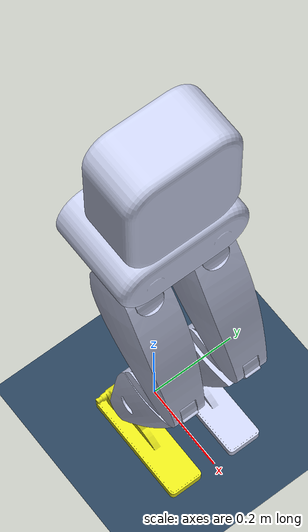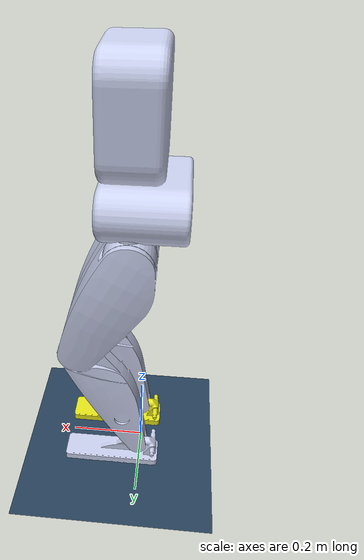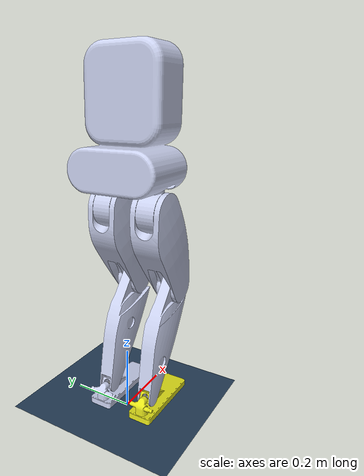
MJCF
<mujoco model="hl">
  <compiler angle="radian" meshdir="../meshes/"/>
  <statistic meansize="0.175672" extent="1.42462" center="0.0113815 2.47552e-05 -0.298814"/>
  <default> <geom contype="0" conaffinity="0"/> </default>
  <option timestep="0.001"/>
  <asset>
    <mesh name="BASE" file="BASE.STL"/>
    <mesh name="Z1" file="Z1.STL"/>
    <mesh name="Z2" file="Z2.STL"/>
    <mesh name="Z3" file="Z3.STL"/>
    <mesh name="Z4" file="Z4.STL"/>
    <mesh name="Z5" file="Z5.STL"/>
    <mesh name="Z6" file="Z6.STL"/>

    <mesh name="Y1" file="Y1.STL"/>
    <mesh name="Y2" file="Y2.STL"/>
    <mesh name="Y3" file="Y3.STL"/>
    <mesh name="Y4" file="Y4.STL"/>
    <mesh name="Y5" file="Y5.STL"/>
    <mesh name="Y6" file="Y6.STL"/>
  </asset>

  <asset>
    <texture type="skybox" builtin="gradient" rgb1=".3 .5 .7" rgb2="0 0 0" width="32" height="512"/>
    <texture name="body" type="cube" builtin="flat" mark="cross" width="128" height="128" rgb1="0.8 0.6 0.4" rgb2="0.8 0.6 0.4" markrgb="1 1 1" random="0.01"/>
    <material name="body" texture="body" texuniform="true" rgba="0.8 0.6 .4 1"/>
    <texture name="grid" type="2d" builtin="checker" width="512" height="512" rgb1=".1 .2 .3" rgb2=".2 .3 .4"/>
    <material name="grid" texture="grid" texrepeat="1 1" texuniform="true" reflectance=".2"/>
  </asset>

  <asset>
    <material name='ankle_acutator1' rgba='0.792157 0.819608 0.933333 1'/>
    <material name='ankle_link1' rgba='0.5 0.5 1.0 1.0'/>
    <material name='ankle_acutator2' rgba='0.792157 0.819608 0.933333 1'/>
    <material name='ankle_link2' rgba='0.5 0.5 1.0 1.0'/>
  </asset>

  <default>
    <default class='ankle_acutator1'>
      <geom type='cylinder' mass='0.1' size='0.025 0.01' pos='0 0 0' euler='1.57 0 0' contype='0' conaffinity='0' material='ankle_acutator1'/>
    </default>
    <default class='ankle_link1'>
      <geom type='cylinder' mass='0.06' size='0.006 0.108' pos='0 0 -0.108' euler='0 0 0' contype='0' conaffinity='0' material='ankle_link1'/>
    </default>
    <default class='ankle_acutator2'>
      <geom type='cylinder' mass='0.1' size='0.025 0.01' pos='0 0 0' euler='1.57 0 0' contype='0' conaffinity='0' material='ankle_acutator2'/>
    </default>
    <default class='ankle_link2'>
      <geom type='cylinder' mass='0.04' size='0.006 0.06' pos='0 0 -0.06' euler='0 0 0' contype='0' conaffinity='0' material='ankle_link2'/>
    </default>
  </default>

  <visual>
    <map force="0.1" zfar="30"/>
    <rgba haze="0.15 0.25 0.35 1"/>
    <global offwidth="2560" offheight="1440" elevation="-20" azimuth="120"/>
  </visual>

  <option timestep="0.002">
    <flag energy="enable" contact="enable"/>
  </option>

  <option cone="elliptic" impratio="1" integrator="implicitfast" jacobian="dense" solver="Newton" iterations="1000" tolerance="1e-10" apirate="1000"/>

  <worldbody>
    <geom name="floor" pos="0 0 0" size="0 0 .05" type="plane" material="grid" condim="4" contype="1" conaffinity="1" />
    <light name="spotlight" mode="targetbodycom" target="BASE" diffuse=".5 .5 .5" specular="0.8 0.8 0.7" pos="0 0 50" cutoff="10"/>
    <body name="BASE" pos="0 0 .789">
      <inertial pos="0.0201327 2.90249e-07 0.375289" quat="0.99283 7.1248e-06 0.119531 -4.64987e-06" mass="10" diaginertia="0.142832 0.088957 0.087302"/>
      <freejoint/>
      <geom type="mesh" contype="1" conaffinity="1" group="1" density="0" rgba="0.792157 0.819608 0.933333 1" mesh="BASE"/>
      <geom type="mesh" rgba="0.792157 0.819608 0.933333 1" mesh="BASE"/>
      <camera name="side" pos="0 -5 1" xyaxes="1 0 0 0 1 2" mode="trackcom"/>
      <site name="imu" pos="0 0 0"/>

      <body name="Z1" pos="0.0345 0.075 0">
        <inertial pos="-1.63205e-05 -7.4182e-09 -7.50723e-05" quat="1.28524e-06 0.70711 -1.91849e-07 0.707103" mass="0.643186" diaginertia="0.0011757 0.000868166 0.000649507"/>
        <joint name="ZJ1" pos="0 0 0" axis="1 0 0" damping="5" limited="false" range="-0.523 0.785"/>
        <geom type="mesh" contype="0" conaffinity="0" group="1" density="0" rgba="0.792157 0.819608 0.933333 1" mesh="Z1"/>
        <geom type="mesh" rgba="0.792157 0.819608 0.933333 1" mesh="Z1"/>
        <body name="Z2">
          <inertial pos="-1.59489e-09 0 -0.118946" quat="0.707107 0 0 0.707106" mass="0.795996" diaginertia="0.00183227 0.00133456 0.000941758"/>
          <joint name="ZJ2" pos="0 0 0" axis="0 0 1" damping="5" limited="false" range="-0.785 0.785"/>
          <geom type="mesh" contype="0" conaffinity="0" group="1" density="0" rgba="0.792157 0.819608 0.933333 1" mesh="Z2"/>
          <geom type="mesh" rgba="0.792157 0.819608 0.933333 1" mesh="Z2"/>
          <body name="Z3" pos="0 0 -0.126"  quat="0.976 0 -0.216 0">
            <inertial pos="-0.00178904 3.34267e-08 -0.131403" quat="0.706517 -0.0289292 -0.0289295 0.706512" mass="6" diaginertia="0.0331969 0.0306625 0.00948311"/>
            <joint name="ZJ3" pos="0 0 0" axis="0 1 0" damping="5" limited="false" range="-1.134 1.204"/>
            <geom type="mesh" contype="0" conaffinity="0" group="1" density="0" rgba="0.792157 0.819608 0.933333 1" mesh="Z3"/>
            <geom type="mesh" rgba="0.792157 0.819608 0.933333 1" mesh="Z3"/>
            <body name="Z4" pos="0 0 -0.3"  quat="0.906 0 0.423 0">
              <inertial pos="-0.00655574 -0.00174545 -0.152171" quat="0.714768 0.0069051 0.00879745 0.699273" mass="2.38165" diaginertia="0.0259847 0.0244417 0.0030829"/>
              <joint name="ZJ4" pos="0 0 0" axis="0 1 0" damping="5" limited="true" range="-2.268 2.268"/>
              <geom type="mesh" contype="0" conaffinity="0" group="1" density="0" rgba="0.792157 0.819608 0.933333 1" mesh="Z4"/>
              <geom type="mesh" rgba="0.792157 0.819608 0.933333 1" mesh="Z4"/>

              <body name="Z5" pos="0 0 -0.37">
                <inertial pos="-1.22576e-08 -1.36554e-07 -2.04408e-08" quat="-0.000898801 0.708427 -0.000902168 0.705783" mass="0.0150389" diaginertia="3.92632e-06 3.92118e-06 3.92116e-06"/>
                <joint name="ZJ5" pos="0 0 0" axis="0 1 0" limited="true" range="-1.57 1.57" damping="5.0"/>
                <geom type="mesh" contype="0" conaffinity="0" group="1" density="0" rgba="0.792157 0.819608 0.933333 1" mesh="Z5"/>
                <body name="Z6" pos="0 0 0.0" quat="0.976 0 -0.216 0">
                  <inertial pos="0.0598388 -9.16885e-05 -0.041539" quat="0.00202343 0.728933 0.0034371 0.684574" mass="0.470445" diaginertia="0.00298476 0.00285776 0.000282574"/>
                  <joint name="ZJ6" pos="0 0 0" axis="1 0 0" limited="true" range="-1.57 1.57"  damping="5.0"/>
                  <geom  name="foot_l" type="mesh" contype="1" conaffinity="1" group="1" density="0" rgba="0.792157 0.819608 0.933333 1" mesh="Z6"/>
                  <site name='foot_l'/>
                </body>
              </body>
            </body>
          </body>
        </body>
      </body>

      <body name="Y1" pos="0.0345 -0.075 0">
        <inertial pos="-1.63205e-05 -7.4182e-09 -7.50723e-05" quat="1.28524e-06 0.70711 -1.91849e-07 0.707103" mass="0.643186" diaginertia="0.0011757 0.000868166 0.000649507"/>
        <geom type="mesh" contype="0" conaffinity="0" group="1" density="0" rgba=".9 .9 .1 1" mesh="Y1"/>
        <geom type="mesh" rgba=".9 .9 .1 1" mesh="Y1"/>
        <joint name="YJ1" pos="0 0 0" axis="-1 0 0" damping="5" limited="false" range="-0.523 0.785"/>
        <body name="Y2">
          <inertial pos="-1.59489e-09 0 -0.118946" quat="0.707107 0 0 0.707106" mass="0.795996" diaginertia="0.00183227 0.00133456 0.000941758"/>
          <joint name="YJ2" pos="0 0 0" axis="0 0 -1" damping="5" limited="false" range="-0.785 0.785"/>
          <geom type="mesh" contype="0" conaffinity="0" group="1" density="0" rgba="0.792157 0.819608 0.933333 1" mesh="Y2"/>
          <geom type="mesh" rgba="0.792157 0.819608 0.933333 1" mesh="Y2"/>
          <body name="Y3" pos="0 0 -0.126" quat="0.976 0 -0.216 0">
            <inertial pos="-0.0017888 -1.37818e-07 -0.131404" quat="0.706518 -0.0289251 -0.0289242 0.706512" mass="6" diaginertia="0.0331971 0.0306629 0.00948288"/>
            <joint name="YJ3" pos="0 0 0" axis="0 -1 0" damping="5" limited="false" range="-1.134 1.204"/>
            <geom type="mesh" contype="0" conaffinity="0" group="1" density="0" rgba="0.792157 0.819608 0.933333 1" mesh="Y3"/>
            <geom type="mesh" rgba=".9 .9 .1 1" mesh="Y3"/>
            <body name="Y4" pos="0 0 -0.3"  quat="0.906 0 0.423 0">
              <inertial pos="-0.0065564 0.00174533 -0.152175" quat="0.699271 0.00879962 0.00690624 0.714769" mass="2.38172" diaginertia="0.0259857 0.0244426 0.00308297"/>
              <joint name="YJ4" pos="0 0 0" axis="0 1 0" damping="5" limited="true" range="-2.268 2.268"/>
              <geom type="mesh" contype="0" conaffinity="0" group="1" density="0" rgba="0.792157 0.819608 0.933333 1" mesh="Y4"/>
              <geom type="mesh" rgba=".9 .9 .1 1" mesh="Y4"/>
              <body name="Y5" pos="0 0 -0.37">
                <inertial pos="-1.22576e-08 1.36554e-07 2.04408e-08" quat="-0.000902168 0.705783 -0.000898801 0.708427" mass="0.0150389" diaginertia="3.92632e-06 3.92118e-06 3.92116e-06"/>
                <joint name="YJ5" pos="0 0 0" axis="0 1 0" limited="true" range="-1.57 1.57" damping="5"/>
                <geom type="mesh" contype="0" conaffinity="0" group="1" density="0" rgba=".9 .9 .1 1" mesh="Y5"/>
                <body name="Y6" pos="0 0 0.0"  quat="0.976 0 -0.216 0">
                  <inertial pos="0.0598389 9.18999e-05 -0.041539" quat="-0.00203281 0.728932 -0.00344922 0.684574" mass="0.470445" diaginertia="0.00298476 0.00285775 0.000282574"/>
                  <joint name="YJ6" pos="0 0 0" axis="1 0 0" limited="true" range="-1.57 1.57" damping="5"/>
                  <geom  name="foot_r" type="mesh" contype="1" conaffinity="1" group="1" density="0" rgba=".9 .9 .1 1" mesh="Y6"/>
                  <site name='foot_r'/>
                </body>
              </body>

            </body>
          </body>
        </body>
      </body>
    </body>
  </worldbody>

  <actuator>

    <motor name="Z1" joint="ZJ1" gear="1"/>
    <motor name="Z2" joint="ZJ2" gear="1"/>
    <motor name="Z3" joint="ZJ3" gear="1"/>
    <motor name="Z4" joint="ZJ4" gear="1"/>
    <motor name="Z5" joint="ZJ5" gear="1"/>
    <motor name="Z6" joint="ZJ6" gear="1"/>
    <motor name="Y1" joint="YJ1" gear="1"/>
    <motor name="Y2" joint="YJ2" gear="1"/>
    <motor name="Y3" joint="YJ3" gear="1"/>
    <motor name="Y4" joint="YJ4" gear="1"/>
    <motor name="Y5" joint="YJ5" gear="1"/>
    <motor name="Y6" joint="YJ6" gear="1"/>

  </actuator>

  <contact>
    <pair name="non-isotropic0" geom1="floor" geom2="foot_r" condim="4" friction="1.0 1.0 1.0 1.0 1.0"/>
    <pair name="non-isotropic1" geom1="floor" geom2="foot_l" condim="4" friction="1.0 1.0 1.0 1.0 1.0"/>
  </contact>

  <sensor>
    <force name='force_r'  site='foot_r' />
    <force name='force_l'  site='foot_l' />
    <jointpos name="Z1_pos" joint="ZJ1" />
    <jointpos name="Z2_pos" joint="ZJ2" />
    <jointpos name="Z3_pos" joint="ZJ3" />
    <jointpos name="Z4_pos" joint="ZJ4" />
    <jointpos name="Z5_pos" joint="ZJ5" />
    <jointpos name="Z6_pos" joint="ZJ6" />

    <jointpos name="Y1_pos" joint="YJ1" />
    <jointpos name="Y2_pos" joint="YJ2" />
    <jointpos name="Y3_pos" joint="YJ3" />
    <jointpos name="Y4_pos" joint="YJ4" />
    <jointpos name="Y5_pos" joint="YJ5" />
    <jointpos name="Y6_pos" joint="YJ6" />

    <jointvel name="Z1_vel" joint="ZJ1" />
    <jointvel name="Z2_vel" joint="ZJ2" />
    <jointvel name="Z3_vel" joint="ZJ3" />
    <jointvel name="Z4_vel" joint="ZJ4" />
    <jointvel name="Z5_vel" joint="ZJ5" />
    <jointvel name="Z6_vel" joint="ZJ6" />
    <jointvel name="Y1_vel" joint="YJ1" />
    <jointvel name="Y2_vel" joint="YJ2" />
    <jointvel name="Y3_vel" joint="YJ3" />
    <jointvel name="Y4_vel" joint="YJ4" />
    <jointvel name="Y5_vel" joint="YJ5" />
    <jointvel name="Y6_vel" joint="YJ6" />
    <accelerometer name="BodyAcc" site="imu"/>
    <velocimeter name="BodyVel" site="imu"/>
    <gyro name="BodyGyro" site="imu"/>
    <framepos name="BodyPos" objtype="site" objname="imu"/>
    <framequat name="BodyQuat" objtype="site" objname="imu"/>
  </sensor>
</mujoco>
